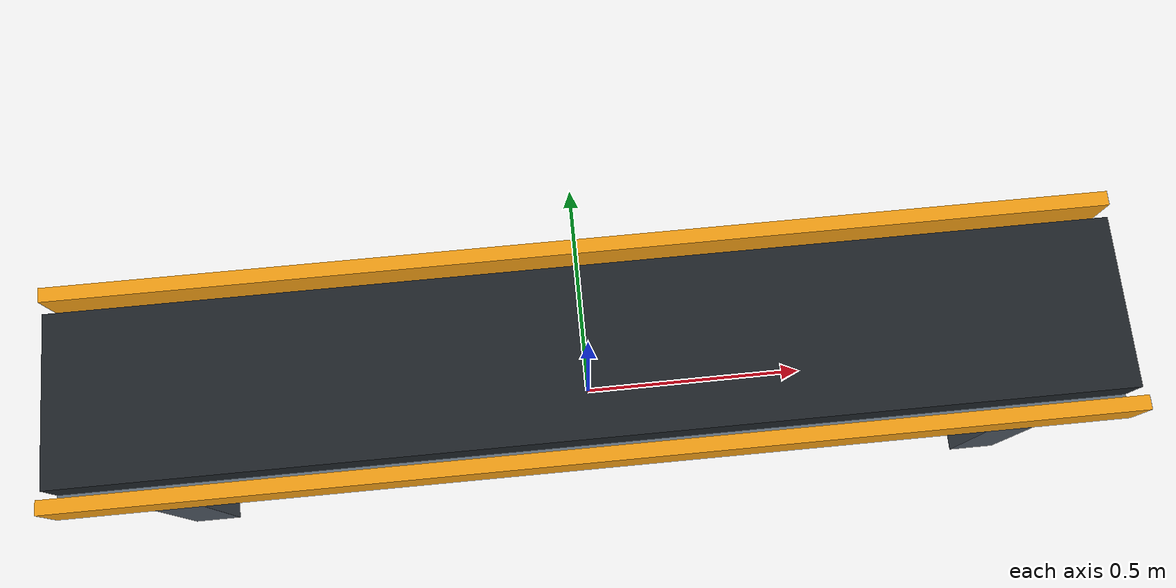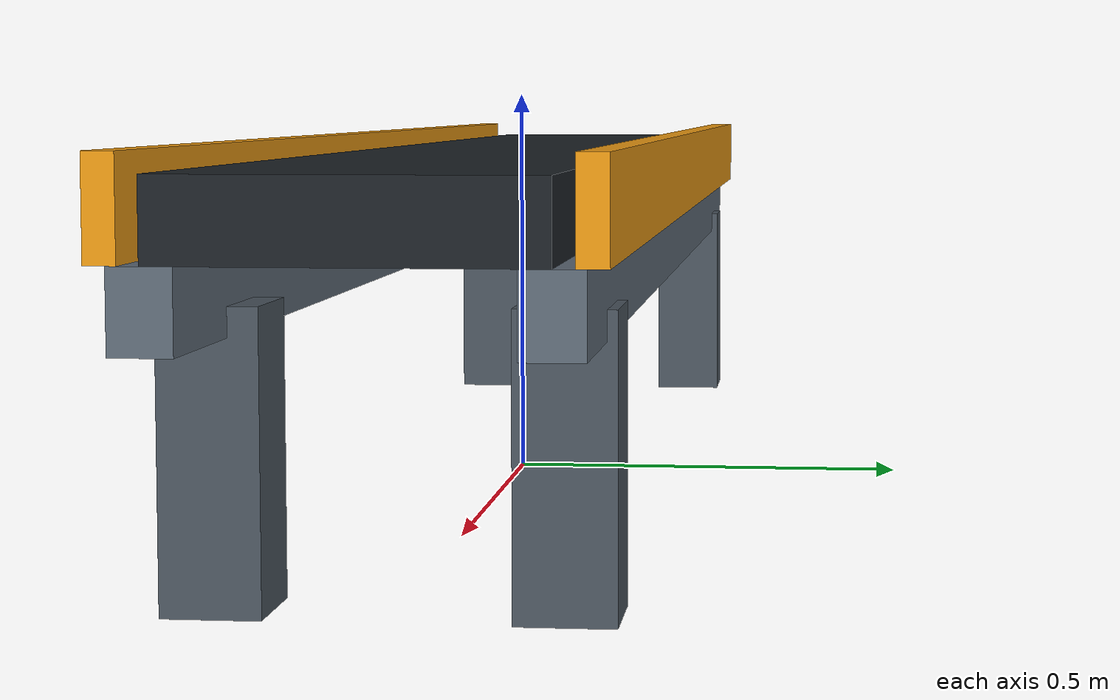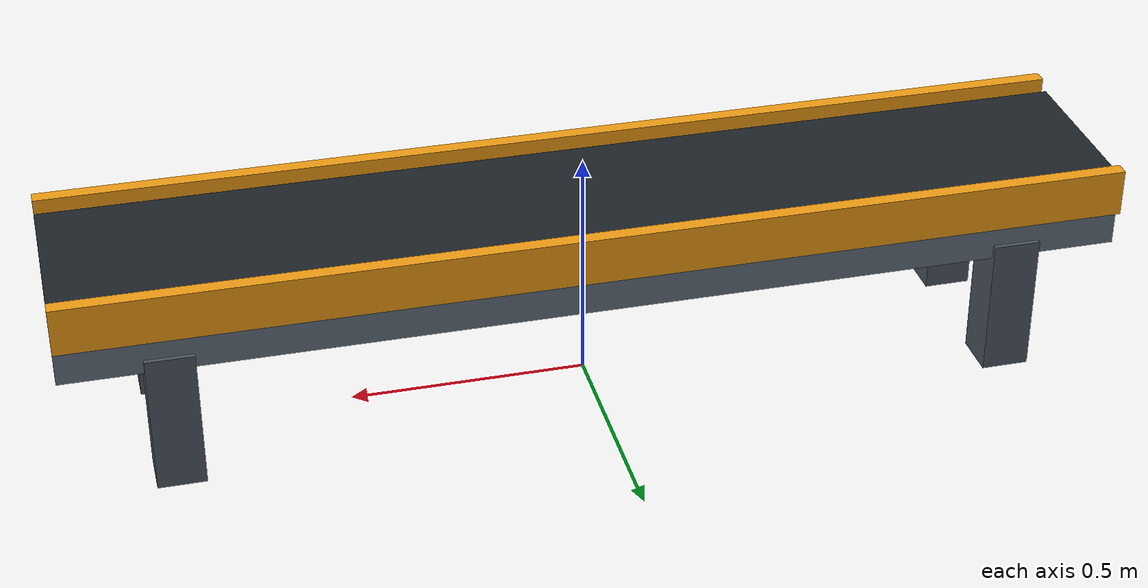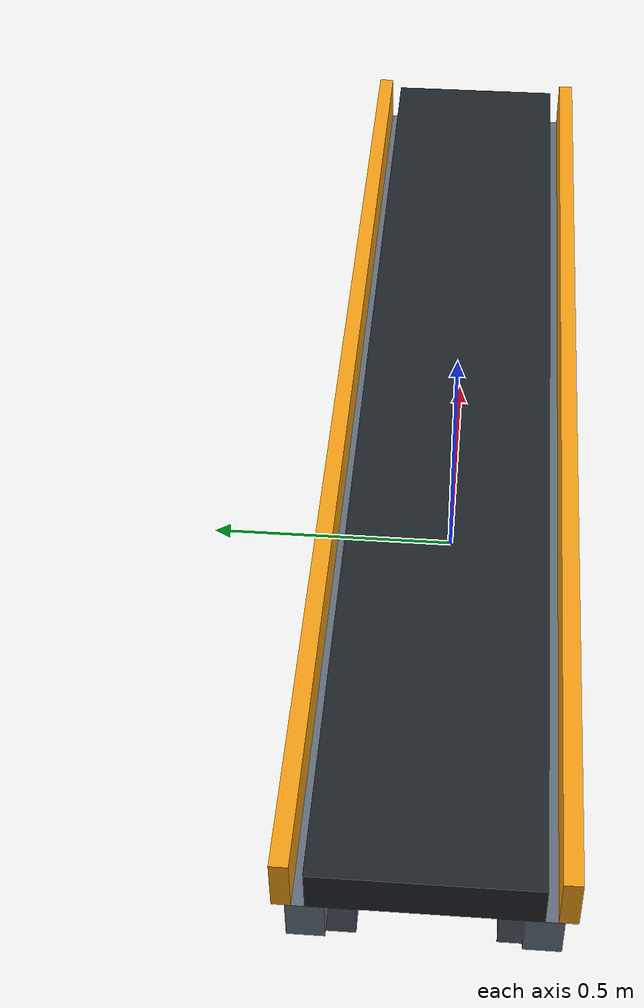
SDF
<?xml version="1.0"?>
<sdf version="1.8">
  <model name="warehouse_conveyor">
    <static>true</static>
    <link name="conveyor">
      <collision name="conveyor_envelope">
        <pose>0 0 0.225 0 0 0</pose>
        <geometry>
          <box>
            <size>2.2 0.45 0.45</size>
          </box>
        </geometry>
      </collision>

      <visual name="belt">
        <pose>0 0 0.39 0 0 0</pose>
        <geometry>
          <box>
            <size>2.2 0.36 0.08</size>
          </box>
        </geometry>
        <material>
          <ambient>0.08 0.10 0.12 1</ambient>
          <diffuse>0.12 0.14 0.16 1</diffuse>
          <specular>0.25 0.25 0.25 1</specular>
        </material>
      </visual>
      <visual name="left_guard">
        <pose>0 0.215 0.40 0 0 0</pose>
        <geometry>
          <box>
            <size>2.2 0.03 0.10</size>
          </box>
        </geometry>
        <material>
          <ambient>0.85 0.50 0.05 1</ambient>
          <diffuse>0.95 0.62 0.08 1</diffuse>
        </material>
      </visual>
      <visual name="right_guard">
        <pose>0 -0.215 0.40 0 0 0</pose>
        <geometry>
          <box>
            <size>2.2 0.03 0.10</size>
          </box>
        </geometry>
        <material>
          <ambient>0.85 0.50 0.05 1</ambient>
          <diffuse>0.95 0.62 0.08 1</diffuse>
        </material>
      </visual>
      <visual name="frame_left">
        <pose>0 0.18 0.31 0 0 0</pose>
        <geometry>
          <box>
            <size>2.2 0.06 0.08</size>
          </box>
        </geometry>
        <material>
          <ambient>0.24 0.28 0.31 1</ambient>
          <diffuse>0.38 0.43 0.48 1</diffuse>
        </material>
      </visual>
      <visual name="frame_right">
        <pose>0 -0.18 0.31 0 0 0</pose>
        <geometry>
          <box>
            <size>2.2 0.06 0.08</size>
          </box>
        </geometry>
        <material>
          <ambient>0.24 0.28 0.31 1</ambient>
          <diffuse>0.38 0.43 0.48 1</diffuse>
        </material>
      </visual>
      <visual name="leg_front_left">
        <pose>0.88 0.17 0.15 0 0 0</pose>
        <geometry>
          <box>
            <size>0.10 0.10 0.30</size>
          </box>
        </geometry>
        <material>
          <diffuse>0.30 0.34 0.38 1</diffuse>
        </material>
      </visual>
      <visual name="leg_front_right">
        <pose>0.88 -0.17 0.15 0 0 0</pose>
        <geometry>
          <box>
            <size>0.10 0.10 0.30</size>
          </box>
        </geometry>
        <material>
          <diffuse>0.30 0.34 0.38 1</diffuse>
        </material>
      </visual>
      <visual name="leg_rear_left">
        <pose>-0.88 0.17 0.15 0 0 0</pose>
        <geometry>
          <box>
            <size>0.10 0.10 0.30</size>
          </box>
        </geometry>
        <material>
          <diffuse>0.30 0.34 0.38 1</diffuse>
        </material>
      </visual>
      <visual name="leg_rear_right">
        <pose>-0.88 -0.17 0.15 0 0 0</pose>
        <geometry>
          <box>
            <size>0.10 0.10 0.30</size>
          </box>
        </geometry>
        <material>
          <diffuse>0.30 0.34 0.38 1</diffuse>
        </material>
      </visual>
    </link>
  </model>
</sdf>
